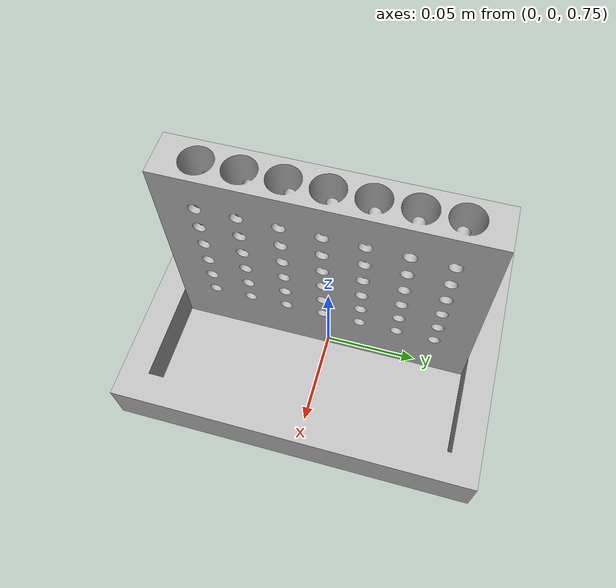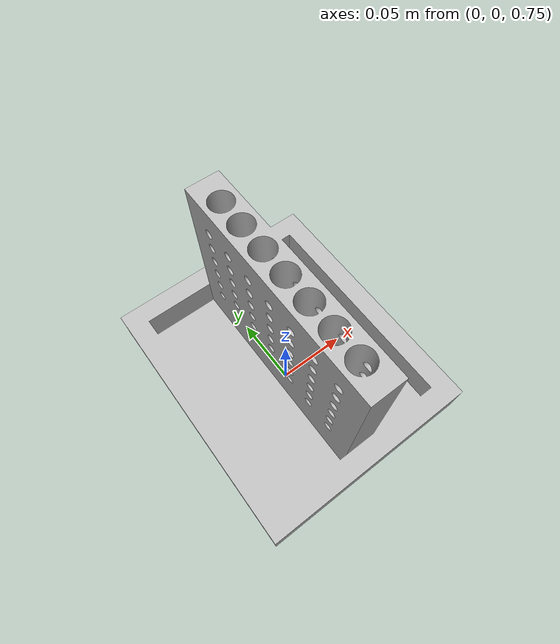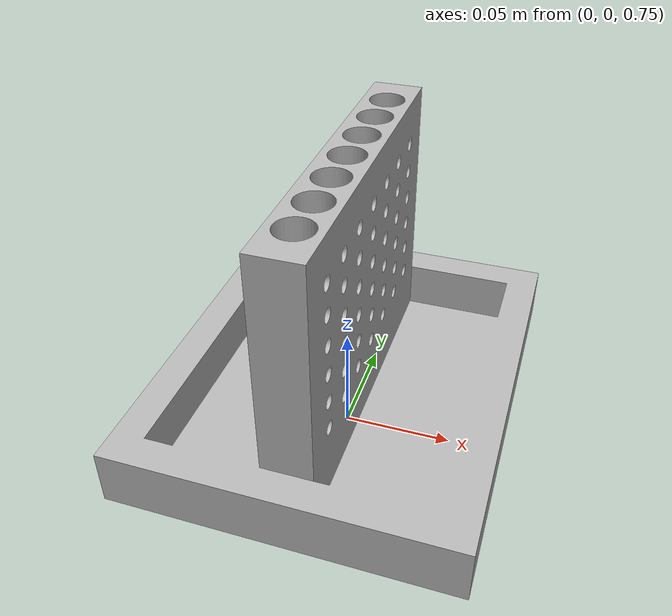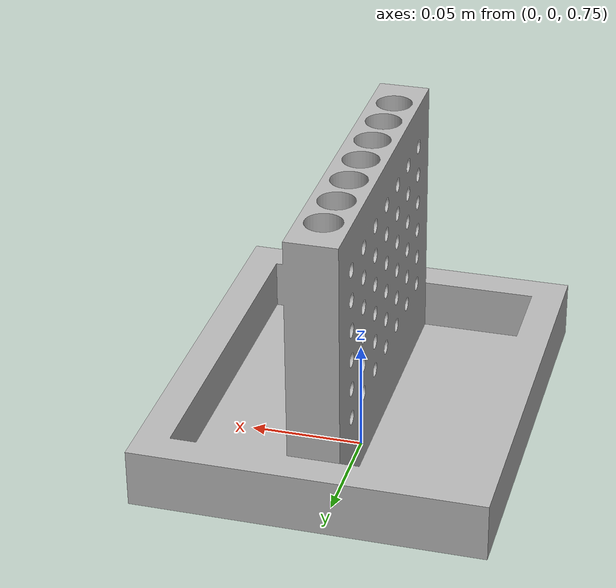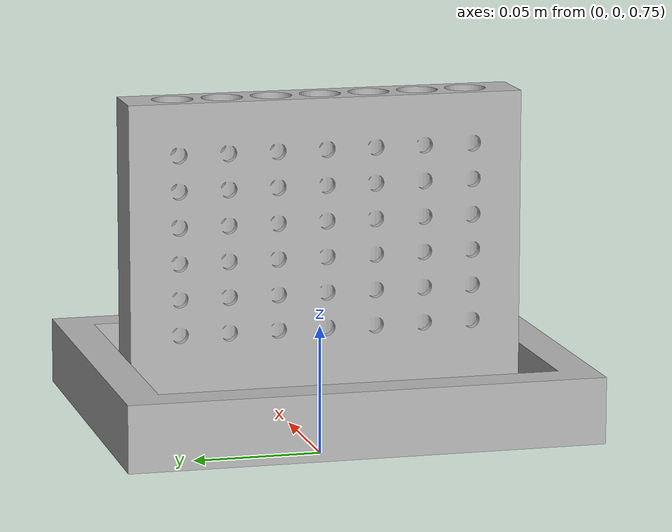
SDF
<?xml version="1.0" ?>
<sdf version="1.4">
  <model name="connect4_board">
    <static>true</static>
    <link name="link">
      <collision name="surface">
        <pose>0 0 0.83 0 0 0</pose>
        <geometry>
          <mesh>
            <uri>model://connect4_board/meshes/connect4_with_base.dae</uri>
          </mesh>
        </geometry>
      </collision>

      <visual name="visual">
        <pose>0 0 0.83 0 0 0</pose>
        <geometry>
          <mesh>
            <uri>model://connect4_board/meshes/connect4_with_base.dae</uri>
          </mesh>
        </geometry>
      </visual>

    </link>
  </model>
</sdf>
